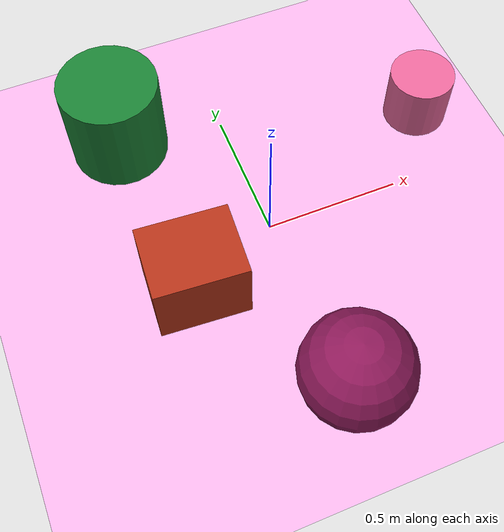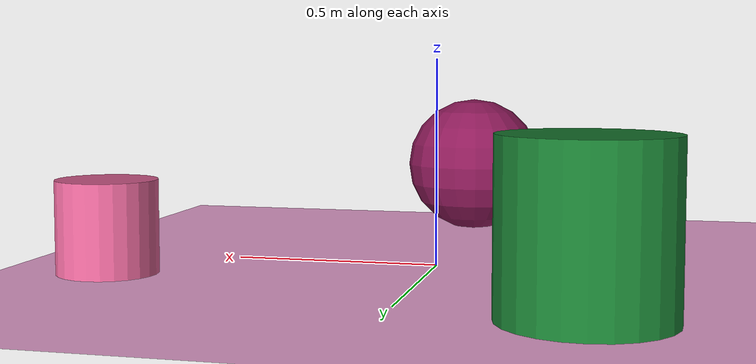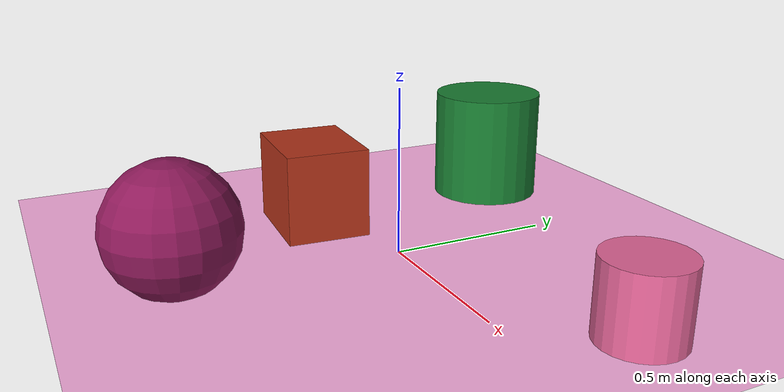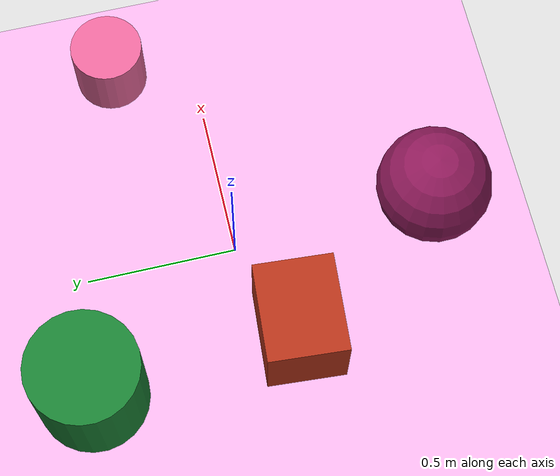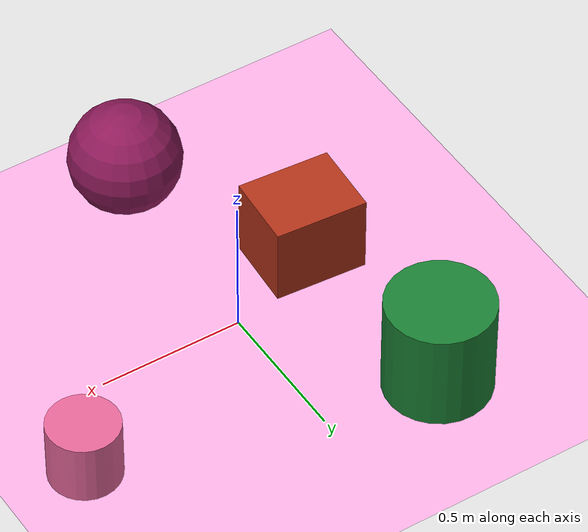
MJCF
<mujoco>
   <asset>
<texture type="skybox" builtin="gradient" rgb1="0.7 0.9 0.9" rgb2="0.9 0.0 0.8" width="256" height="256"/>
<texture name="flat_0" builtin="flat" rgb1="0.1 0.5 0.2" rgb2="0.1 0.5 0.2"  width="200" height="200"/>
<texture name="flat_1" builtin="flat" rgb1="0.7 0.2 0.1" rgb2="0.7 0.2 0.1"  width="200" height="200"/>
<texture name="flat_2" builtin="flat" rgb1="0.9 0.4 0.6" rgb2="0.9 0.4 0.6"  width="200" height="200"/>
<texture name="gradient_3" builtin="gradient" rgb1="0.6 0.1 0.4" rgb2="0.5 0.1 0.3" width="200" height="200"/><material name="flat_0_mat" reflectance="0" texture="flat_0" texuniform="true"/>
<material name="flat_1_mat" reflectance="0" texture="flat_1" texuniform="true"/>
<material name="flat_2_mat" reflectance="0" texture="flat_2" texuniform="true"/>
<material name="gradient_3_mat" reflectance="0" texture="gradient_3" texuniform="true"/>
   </asset>

   <worldbody>
      <light diffuse=".9 .9 .9" pos="0 0 3" dir="0 0 -1"/>
     <geom type="plane" size="1 1 0.1" rgba="1.0 0.7 0.9 1"/>
<geom type="cylinder" pos="-0.39 0.55 0.18" size="0.18 0.18 0.18" material="flat_0_mat" euler="0 0 19" />
<geom type="box" pos="-0.33 -0.14 0.14" size="0.13 0.16 0.14" material="flat_1_mat" euler="0 0 86" />
<geom type="cylinder" pos="0.73 0.28 0.11" size="0.12 0.11 0.11" material="flat_2_mat" euler="0 0 2" />
<geom type="sphere" pos="0.01 -0.67 0.19" size="0.19 0.19 0.19" material="gradient_3_mat" euler="0 0 46" /><camera euler="60 0 180" fovy="60" name="camera1" pos="-0.2 -1.5 1"></camera>   </worldbody>
</mujoco>
